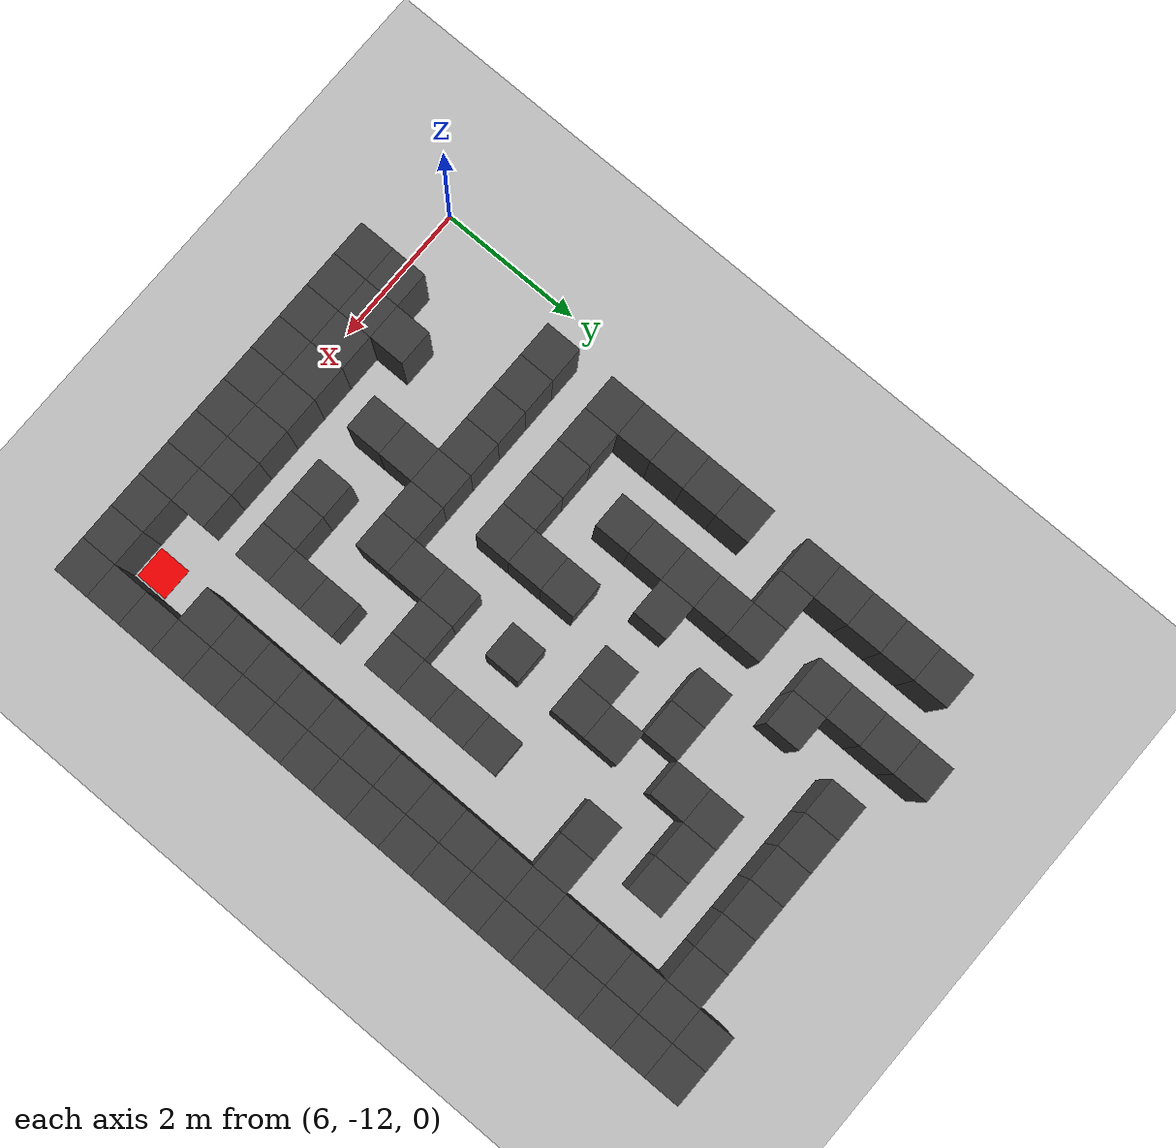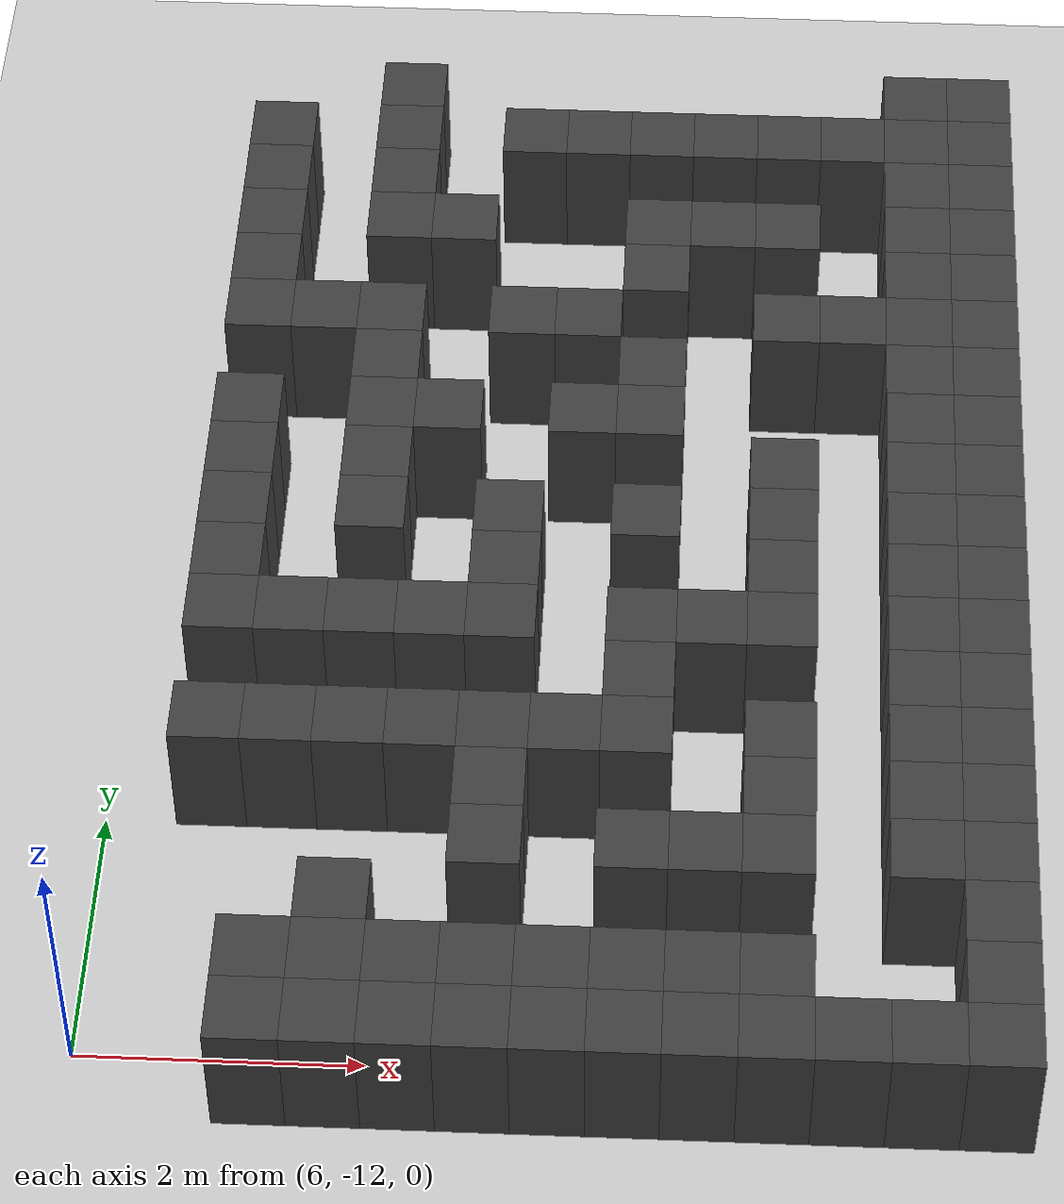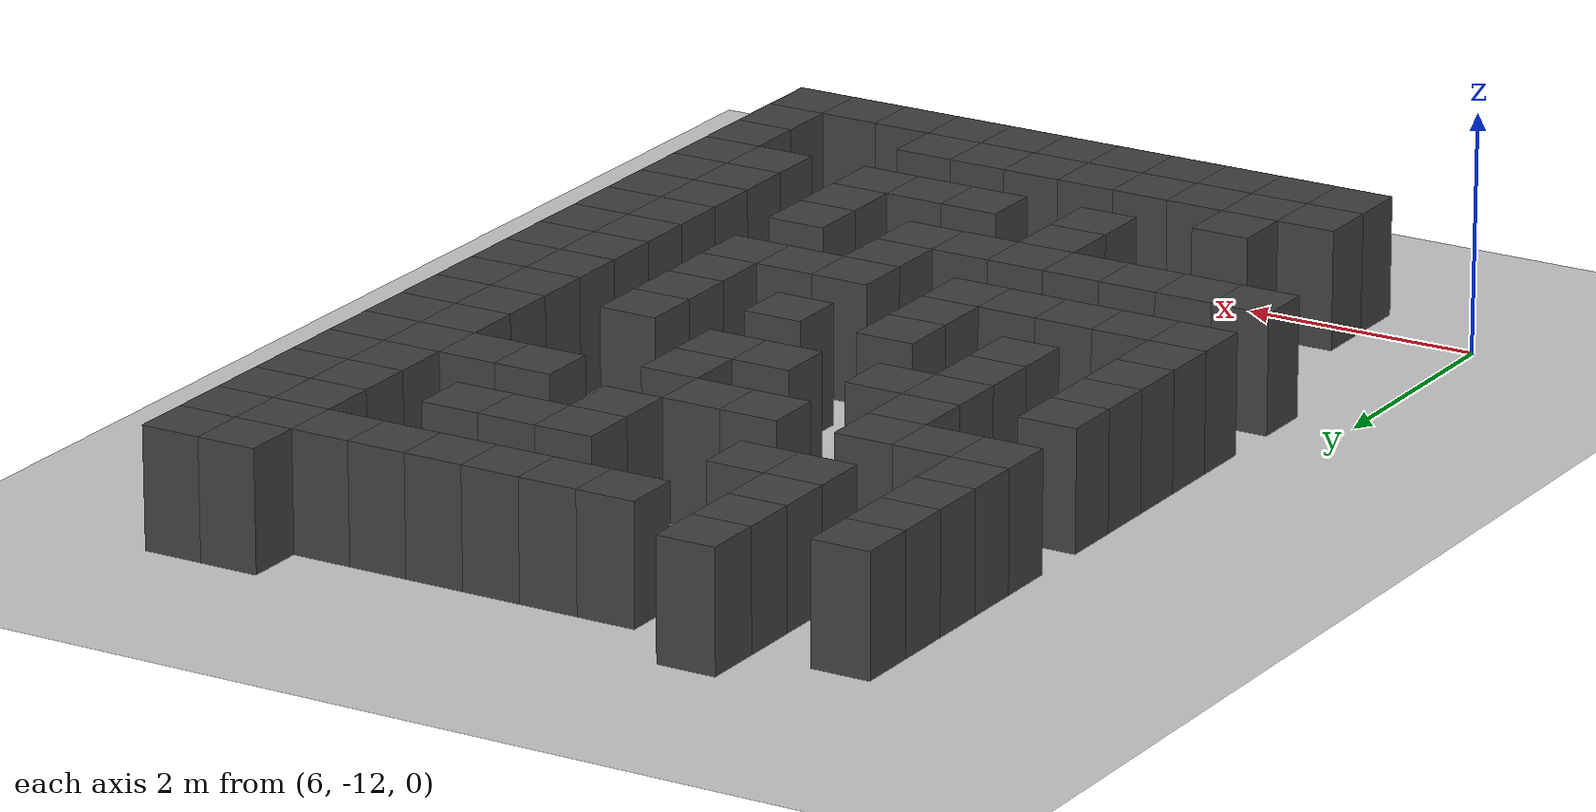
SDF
<sdf version="1.7">
 <world name="map_16048">
  <model name="ground_plane">
   <static>true</static>
   <link name="link">
    <collision name="collision">
     <geometry><plane><normal>0 0 1</normal><size>200 200</size></plane></geometry>
    </collision>
    <visual name="visual">
     <geometry><plane><normal>0 0 1</normal><size>200 200</size></plane></geometry>
     <material><ambient>0.8 0.8 0.8 1</ambient><diffuse>0.8 0.8 0.8 1</diffuse></material>
    </visual>
   </link>
  </model>
  <model name="maze_environment">
   <static>true</static>
   <link name="wall_758">
    <pose>7.750 -3.250 0.500 0 0 0</pose>
    <collision name="col"><geometry><box><size>0.5 0.5 1.0</size></box></geometry></collision>
    <visual name="vis">
     <geometry><box><size>0.5 0.5 1.0</size></box></geometry>
     <material><ambient>0.15 0.15 0.15 1</ambient><diffuse>0.25 0.25 0.25 1</diffuse></material>
    </visual>
   </link>
   <link name="wall_759">
    <pose>11.750 -3.250 0.500 0 0 0</pose>
    <collision name="col"><geometry><box><size>0.5 0.5 1.0</size></box></geometry></collision>
    <visual name="vis">
     <geometry><box><size>0.5 0.5 1.0</size></box></geometry>
     <material><ambient>0.15 0.15 0.15 1</ambient><diffuse>0.25 0.25 0.25 1</diffuse></material>
    </visual>
   </link>
   <link name="wall_760">
    <pose>12.250 -3.250 0.500 0 0 0</pose>
    <collision name="col"><geometry><box><size>0.5 0.5 1.0</size></box></geometry></collision>
    <visual name="vis">
     <geometry><box><size>0.5 0.5 1.0</size></box></geometry>
     <material><ambient>0.15 0.15 0.15 1</ambient><diffuse>0.25 0.25 0.25 1</diffuse></material>
    </visual>
   </link>
   <link name="wall_786">
    <pose>6.750 -3.750 0.500 0 0 0</pose>
    <collision name="col"><geometry><box><size>0.5 0.5 1.0</size></box></geometry></collision>
    <visual name="vis">
     <geometry><box><size>0.5 0.5 1.0</size></box></geometry>
     <material><ambient>0.15 0.15 0.15 1</ambient><diffuse>0.25 0.25 0.25 1</diffuse></material>
    </visual>
   </link>
   <link name="wall_787">
    <pose>7.750 -3.750 0.500 0 0 0</pose>
    <collision name="col"><geometry><box><size>0.5 0.5 1.0</size></box></geometry></collision>
    <visual name="vis">
     <geometry><box><size>0.5 0.5 1.0</size></box></geometry>
     <material><ambient>0.15 0.15 0.15 1</ambient><diffuse>0.25 0.25 0.25 1</diffuse></material>
    </visual>
   </link>
   <link name="wall_788">
    <pose>8.750 -3.750 0.500 0 0 0</pose>
    <collision name="col"><geometry><box><size>0.5 0.5 1.0</size></box></geometry></collision>
    <visual name="vis">
     <geometry><box><size>0.5 0.5 1.0</size></box></geometry>
     <material><ambient>0.15 0.15 0.15 1</ambient><diffuse>0.25 0.25 0.25 1</diffuse></material>
    </visual>
   </link>
   <link name="wall_789">
    <pose>9.250 -3.750 0.500 0 0 0</pose>
    <collision name="col"><geometry><box><size>0.5 0.5 1.0</size></box></geometry></collision>
    <visual name="vis">
     <geometry><box><size>0.5 0.5 1.0</size></box></geometry>
     <material><ambient>0.15 0.15 0.15 1</ambient><diffuse>0.25 0.25 0.25 1</diffuse></material>
    </visual>
   </link>
   <link name="wall_790">
    <pose>9.750 -3.750 0.500 0 0 0</pose>
    <collision name="col"><geometry><box><size>0.5 0.5 1.0</size></box></geometry></collision>
    <visual name="vis">
     <geometry><box><size>0.5 0.5 1.0</size></box></geometry>
     <material><ambient>0.15 0.15 0.15 1</ambient><diffuse>0.25 0.25 0.25 1</diffuse></material>
    </visual>
   </link>
   <link name="wall_791">
    <pose>10.250 -3.750 0.500 0 0 0</pose>
    <collision name="col"><geometry><box><size>0.5 0.5 1.0</size></box></geometry></collision>
    <visual name="vis">
     <geometry><box><size>0.5 0.5 1.0</size></box></geometry>
     <material><ambient>0.15 0.15 0.15 1</ambient><diffuse>0.25 0.25 0.25 1</diffuse></material>
    </visual>
   </link>
   <link name="wall_792">
    <pose>10.750 -3.750 0.500 0 0 0</pose>
    <collision name="col"><geometry><box><size>0.5 0.5 1.0</size></box></geometry></collision>
    <visual name="vis">
     <geometry><box><size>0.5 0.5 1.0</size></box></geometry>
     <material><ambient>0.15 0.15 0.15 1</ambient><diffuse>0.25 0.25 0.25 1</diffuse></material>
    </visual>
   </link>
   <link name="wall_793">
    <pose>11.250 -3.750 0.500 0 0 0</pose>
    <collision name="col"><geometry><box><size>0.5 0.5 1.0</size></box></geometry></collision>
    <visual name="vis">
     <geometry><box><size>0.5 0.5 1.0</size></box></geometry>
     <material><ambient>0.15 0.15 0.15 1</ambient><diffuse>0.25 0.25 0.25 1</diffuse></material>
    </visual>
   </link>
   <link name="wall_794">
    <pose>11.750 -3.750 0.500 0 0 0</pose>
    <collision name="col"><geometry><box><size>0.5 0.5 1.0</size></box></geometry></collision>
    <visual name="vis">
     <geometry><box><size>0.5 0.5 1.0</size></box></geometry>
     <material><ambient>0.15 0.15 0.15 1</ambient><diffuse>0.25 0.25 0.25 1</diffuse></material>
    </visual>
   </link>
   <link name="wall_795">
    <pose>12.250 -3.750 0.500 0 0 0</pose>
    <collision name="col"><geometry><box><size>0.5 0.5 1.0</size></box></geometry></collision>
    <visual name="vis">
     <geometry><box><size>0.5 0.5 1.0</size></box></geometry>
     <material><ambient>0.15 0.15 0.15 1</ambient><diffuse>0.25 0.25 0.25 1</diffuse></material>
    </visual>
   </link>
   <link name="wall_805">
    <pose>6.750 -4.250 0.500 0 0 0</pose>
    <collision name="col"><geometry><box><size>0.5 0.5 1.0</size></box></geometry></collision>
    <visual name="vis">
     <geometry><box><size>0.5 0.5 1.0</size></box></geometry>
     <material><ambient>0.15 0.15 0.15 1</ambient><diffuse>0.25 0.25 0.25 1</diffuse></material>
    </visual>
   </link>
   <link name="wall_806">
    <pose>7.750 -4.250 0.500 0 0 0</pose>
    <collision name="col"><geometry><box><size>0.5 0.5 1.0</size></box></geometry></collision>
    <visual name="vis">
     <geometry><box><size>0.5 0.5 1.0</size></box></geometry>
     <material><ambient>0.15 0.15 0.15 1</ambient><diffuse>0.25 0.25 0.25 1</diffuse></material>
    </visual>
   </link>
   <link name="wall_807">
    <pose>11.750 -4.250 0.500 0 0 0</pose>
    <collision name="col"><geometry><box><size>0.5 0.5 1.0</size></box></geometry></collision>
    <visual name="vis">
     <geometry><box><size>0.5 0.5 1.0</size></box></geometry>
     <material><ambient>0.15 0.15 0.15 1</ambient><diffuse>0.25 0.25 0.25 1</diffuse></material>
    </visual>
   </link>
   <link name="wall_808">
    <pose>12.250 -4.250 0.500 0 0 0</pose>
    <collision name="col"><geometry><box><size>0.5 0.5 1.0</size></box></geometry></collision>
    <visual name="vis">
     <geometry><box><size>0.5 0.5 1.0</size></box></geometry>
     <material><ambient>0.15 0.15 0.15 1</ambient><diffuse>0.25 0.25 0.25 1</diffuse></material>
    </visual>
   </link>
   <link name="wall_835">
    <pose>6.750 -4.750 0.500 0 0 0</pose>
    <collision name="col"><geometry><box><size>0.5 0.5 1.0</size></box></geometry></collision>
    <visual name="vis">
     <geometry><box><size>0.5 0.5 1.0</size></box></geometry>
     <material><ambient>0.15 0.15 0.15 1</ambient><diffuse>0.25 0.25 0.25 1</diffuse></material>
    </visual>
   </link>
   <link name="wall_836">
    <pose>7.750 -4.750 0.500 0 0 0</pose>
    <collision name="col"><geometry><box><size>0.5 0.5 1.0</size></box></geometry></collision>
    <visual name="vis">
     <geometry><box><size>0.5 0.5 1.0</size></box></geometry>
     <material><ambient>0.15 0.15 0.15 1</ambient><diffuse>0.25 0.25 0.25 1</diffuse></material>
    </visual>
   </link>
   <link name="wall_837">
    <pose>8.250 -4.750 0.500 0 0 0</pose>
    <collision name="col"><geometry><box><size>0.5 0.5 1.0</size></box></geometry></collision>
    <visual name="vis">
     <geometry><box><size>0.5 0.5 1.0</size></box></geometry>
     <material><ambient>0.15 0.15 0.15 1</ambient><diffuse>0.25 0.25 0.25 1</diffuse></material>
    </visual>
   </link>
   <link name="wall_838">
    <pose>9.750 -4.750 0.500 0 0 0</pose>
    <collision name="col"><geometry><box><size>0.5 0.5 1.0</size></box></geometry></collision>
    <visual name="vis">
     <geometry><box><size>0.5 0.5 1.0</size></box></geometry>
     <material><ambient>0.15 0.15 0.15 1</ambient><diffuse>0.25 0.25 0.25 1</diffuse></material>
    </visual>
   </link>
   <link name="wall_839">
    <pose>10.250 -4.750 0.500 0 0 0</pose>
    <collision name="col"><geometry><box><size>0.5 0.5 1.0</size></box></geometry></collision>
    <visual name="vis">
     <geometry><box><size>0.5 0.5 1.0</size></box></geometry>
     <material><ambient>0.15 0.15 0.15 1</ambient><diffuse>0.25 0.25 0.25 1</diffuse></material>
    </visual>
   </link>
   <link name="wall_840">
    <pose>10.750 -4.750 0.500 0 0 0</pose>
    <collision name="col"><geometry><box><size>0.5 0.5 1.0</size></box></geometry></collision>
    <visual name="vis">
     <geometry><box><size>0.5 0.5 1.0</size></box></geometry>
     <material><ambient>0.15 0.15 0.15 1</ambient><diffuse>0.25 0.25 0.25 1</diffuse></material>
    </visual>
   </link>
   <link name="wall_841">
    <pose>11.750 -4.750 0.500 0 0 0</pose>
    <collision name="col"><geometry><box><size>0.5 0.5 1.0</size></box></geometry></collision>
    <visual name="vis">
     <geometry><box><size>0.5 0.5 1.0</size></box></geometry>
     <material><ambient>0.15 0.15 0.15 1</ambient><diffuse>0.25 0.25 0.25 1</diffuse></material>
    </visual>
   </link>
   <link name="wall_842">
    <pose>12.250 -4.750 0.500 0 0 0</pose>
    <collision name="col"><geometry><box><size>0.5 0.5 1.0</size></box></geometry></collision>
    <visual name="vis">
     <geometry><box><size>0.5 0.5 1.0</size></box></geometry>
     <material><ambient>0.15 0.15 0.15 1</ambient><diffuse>0.25 0.25 0.25 1</diffuse></material>
    </visual>
   </link>
   <link name="wall_852">
    <pose>6.750 -5.250 0.500 0 0 0</pose>
    <collision name="col"><geometry><box><size>0.5 0.5 1.0</size></box></geometry></collision>
    <visual name="vis">
     <geometry><box><size>0.5 0.5 1.0</size></box></geometry>
     <material><ambient>0.15 0.15 0.15 1</ambient><diffuse>0.25 0.25 0.25 1</diffuse></material>
    </visual>
   </link>
   <link name="wall_853">
    <pose>9.750 -5.250 0.500 0 0 0</pose>
    <collision name="col"><geometry><box><size>0.5 0.5 1.0</size></box></geometry></collision>
    <visual name="vis">
     <geometry><box><size>0.5 0.5 1.0</size></box></geometry>
     <material><ambient>0.15 0.15 0.15 1</ambient><diffuse>0.25 0.25 0.25 1</diffuse></material>
    </visual>
   </link>
   <link name="wall_854">
    <pose>11.750 -5.250 0.500 0 0 0</pose>
    <collision name="col"><geometry><box><size>0.5 0.5 1.0</size></box></geometry></collision>
    <visual name="vis">
     <geometry><box><size>0.5 0.5 1.0</size></box></geometry>
     <material><ambient>0.15 0.15 0.15 1</ambient><diffuse>0.25 0.25 0.25 1</diffuse></material>
    </visual>
   </link>
   <link name="wall_855">
    <pose>12.250 -5.250 0.500 0 0 0</pose>
    <collision name="col"><geometry><box><size>0.5 0.5 1.0</size></box></geometry></collision>
    <visual name="vis">
     <geometry><box><size>0.5 0.5 1.0</size></box></geometry>
     <material><ambient>0.15 0.15 0.15 1</ambient><diffuse>0.25 0.25 0.25 1</diffuse></material>
    </visual>
   </link>
   <link name="wall_881">
    <pose>6.750 -5.750 0.500 0 0 0</pose>
    <collision name="col"><geometry><box><size>0.5 0.5 1.0</size></box></geometry></collision>
    <visual name="vis">
     <geometry><box><size>0.5 0.5 1.0</size></box></geometry>
     <material><ambient>0.15 0.15 0.15 1</ambient><diffuse>0.25 0.25 0.25 1</diffuse></material>
    </visual>
   </link>
   <link name="wall_882">
    <pose>7.250 -5.750 0.500 0 0 0</pose>
    <collision name="col"><geometry><box><size>0.5 0.5 1.0</size></box></geometry></collision>
    <visual name="vis">
     <geometry><box><size>0.5 0.5 1.0</size></box></geometry>
     <material><ambient>0.15 0.15 0.15 1</ambient><diffuse>0.25 0.25 0.25 1</diffuse></material>
    </visual>
   </link>
   <link name="wall_883">
    <pose>7.750 -5.750 0.500 0 0 0</pose>
    <collision name="col"><geometry><box><size>0.5 0.5 1.0</size></box></geometry></collision>
    <visual name="vis">
     <geometry><box><size>0.5 0.5 1.0</size></box></geometry>
     <material><ambient>0.15 0.15 0.15 1</ambient><diffuse>0.25 0.25 0.25 1</diffuse></material>
    </visual>
   </link>
   <link name="wall_884">
    <pose>8.750 -5.750 0.500 0 0 0</pose>
    <collision name="col"><geometry><box><size>0.5 0.5 1.0</size></box></geometry></collision>
    <visual name="vis">
     <geometry><box><size>0.5 0.5 1.0</size></box></geometry>
     <material><ambient>0.15 0.15 0.15 1</ambient><diffuse>0.25 0.25 0.25 1</diffuse></material>
    </visual>
   </link>
   <link name="wall_885">
    <pose>9.250 -5.750 0.500 0 0 0</pose>
    <collision name="col"><geometry><box><size>0.5 0.5 1.0</size></box></geometry></collision>
    <visual name="vis">
     <geometry><box><size>0.5 0.5 1.0</size></box></geometry>
     <material><ambient>0.15 0.15 0.15 1</ambient><diffuse>0.25 0.25 0.25 1</diffuse></material>
    </visual>
   </link>
   <link name="wall_886">
    <pose>10.750 -5.750 0.500 0 0 0</pose>
    <collision name="col"><geometry><box><size>0.5 0.5 1.0</size></box></geometry></collision>
    <visual name="vis">
     <geometry><box><size>0.5 0.5 1.0</size></box></geometry>
     <material><ambient>0.15 0.15 0.15 1</ambient><diffuse>0.25 0.25 0.25 1</diffuse></material>
    </visual>
   </link>
   <link name="wall_887">
    <pose>11.250 -5.750 0.500 0 0 0</pose>
    <collision name="col"><geometry><box><size>0.5 0.5 1.0</size></box></geometry></collision>
    <visual name="vis">
     <geometry><box><size>0.5 0.5 1.0</size></box></geometry>
     <material><ambient>0.15 0.15 0.15 1</ambient><diffuse>0.25 0.25 0.25 1</diffuse></material>
    </visual>
   </link>
   <link name="wall_888">
    <pose>11.750 -5.750 0.500 0 0 0</pose>
    <collision name="col"><geometry><box><size>0.5 0.5 1.0</size></box></geometry></collision>
    <visual name="vis">
     <geometry><box><size>0.5 0.5 1.0</size></box></geometry>
     <material><ambient>0.15 0.15 0.15 1</ambient><diffuse>0.25 0.25 0.25 1</diffuse></material>
    </visual>
   </link>
   <link name="wall_889">
    <pose>12.250 -5.750 0.500 0 0 0</pose>
    <collision name="col"><geometry><box><size>0.5 0.5 1.0</size></box></geometry></collision>
    <visual name="vis">
     <geometry><box><size>0.5 0.5 1.0</size></box></geometry>
     <material><ambient>0.15 0.15 0.15 1</ambient><diffuse>0.25 0.25 0.25 1</diffuse></material>
    </visual>
   </link>
   <link name="wall_901">
    <pose>7.750 -6.250 0.500 0 0 0</pose>
    <collision name="col"><geometry><box><size>0.5 0.5 1.0</size></box></geometry></collision>
    <visual name="vis">
     <geometry><box><size>0.5 0.5 1.0</size></box></geometry>
     <material><ambient>0.15 0.15 0.15 1</ambient><diffuse>0.25 0.25 0.25 1</diffuse></material>
    </visual>
   </link>
   <link name="wall_902">
    <pose>9.750 -6.250 0.500 0 0 0</pose>
    <collision name="col"><geometry><box><size>0.5 0.5 1.0</size></box></geometry></collision>
    <visual name="vis">
     <geometry><box><size>0.5 0.5 1.0</size></box></geometry>
     <material><ambient>0.15 0.15 0.15 1</ambient><diffuse>0.25 0.25 0.25 1</diffuse></material>
    </visual>
   </link>
   <link name="wall_903">
    <pose>11.750 -6.250 0.500 0 0 0</pose>
    <collision name="col"><geometry><box><size>0.5 0.5 1.0</size></box></geometry></collision>
    <visual name="vis">
     <geometry><box><size>0.5 0.5 1.0</size></box></geometry>
     <material><ambient>0.15 0.15 0.15 1</ambient><diffuse>0.25 0.25 0.25 1</diffuse></material>
    </visual>
   </link>
   <link name="wall_904">
    <pose>12.250 -6.250 0.500 0 0 0</pose>
    <collision name="col"><geometry><box><size>0.5 0.5 1.0</size></box></geometry></collision>
    <visual name="vis">
     <geometry><box><size>0.5 0.5 1.0</size></box></geometry>
     <material><ambient>0.15 0.15 0.15 1</ambient><diffuse>0.25 0.25 0.25 1</diffuse></material>
    </visual>
   </link>
   <link name="wall_929">
    <pose>6.750 -6.750 0.500 0 0 0</pose>
    <collision name="col"><geometry><box><size>0.5 0.5 1.0</size></box></geometry></collision>
    <visual name="vis">
     <geometry><box><size>0.5 0.5 1.0</size></box></geometry>
     <material><ambient>0.15 0.15 0.15 1</ambient><diffuse>0.25 0.25 0.25 1</diffuse></material>
    </visual>
   </link>
   <link name="wall_930">
    <pose>7.750 -6.750 0.500 0 0 0</pose>
    <collision name="col"><geometry><box><size>0.5 0.5 1.0</size></box></geometry></collision>
    <visual name="vis">
     <geometry><box><size>0.5 0.5 1.0</size></box></geometry>
     <material><ambient>0.15 0.15 0.15 1</ambient><diffuse>0.25 0.25 0.25 1</diffuse></material>
    </visual>
   </link>
   <link name="wall_931">
    <pose>8.250 -6.750 0.500 0 0 0</pose>
    <collision name="col"><geometry><box><size>0.5 0.5 1.0</size></box></geometry></collision>
    <visual name="vis">
     <geometry><box><size>0.5 0.5 1.0</size></box></geometry>
     <material><ambient>0.15 0.15 0.15 1</ambient><diffuse>0.25 0.25 0.25 1</diffuse></material>
    </visual>
   </link>
   <link name="wall_932">
    <pose>9.250 -6.750 0.500 0 0 0</pose>
    <collision name="col"><geometry><box><size>0.5 0.5 1.0</size></box></geometry></collision>
    <visual name="vis">
     <geometry><box><size>0.5 0.5 1.0</size></box></geometry>
     <material><ambient>0.15 0.15 0.15 1</ambient><diffuse>0.25 0.25 0.25 1</diffuse></material>
    </visual>
   </link>
   <link name="wall_933">
    <pose>9.750 -6.750 0.500 0 0 0</pose>
    <collision name="col"><geometry><box><size>0.5 0.5 1.0</size></box></geometry></collision>
    <visual name="vis">
     <geometry><box><size>0.5 0.5 1.0</size></box></geometry>
     <material><ambient>0.15 0.15 0.15 1</ambient><diffuse>0.25 0.25 0.25 1</diffuse></material>
    </visual>
   </link>
   <link name="wall_934">
    <pose>11.750 -6.750 0.500 0 0 0</pose>
    <collision name="col"><geometry><box><size>0.5 0.5 1.0</size></box></geometry></collision>
    <visual name="vis">
     <geometry><box><size>0.5 0.5 1.0</size></box></geometry>
     <material><ambient>0.15 0.15 0.15 1</ambient><diffuse>0.25 0.25 0.25 1</diffuse></material>
    </visual>
   </link>
   <link name="wall_935">
    <pose>12.250 -6.750 0.500 0 0 0</pose>
    <collision name="col"><geometry><box><size>0.5 0.5 1.0</size></box></geometry></collision>
    <visual name="vis">
     <geometry><box><size>0.5 0.5 1.0</size></box></geometry>
     <material><ambient>0.15 0.15 0.15 1</ambient><diffuse>0.25 0.25 0.25 1</diffuse></material>
    </visual>
   </link>
   <link name="wall_941">
    <pose>6.750 -7.250 0.500 0 0 0</pose>
    <collision name="col"><geometry><box><size>0.5 0.5 1.0</size></box></geometry></collision>
    <visual name="vis">
     <geometry><box><size>0.5 0.5 1.0</size></box></geometry>
     <material><ambient>0.15 0.15 0.15 1</ambient><diffuse>0.25 0.25 0.25 1</diffuse></material>
    </visual>
   </link>
   <link name="wall_942">
    <pose>7.750 -7.250 0.500 0 0 0</pose>
    <collision name="col"><geometry><box><size>0.5 0.5 1.0</size></box></geometry></collision>
    <visual name="vis">
     <geometry><box><size>0.5 0.5 1.0</size></box></geometry>
     <material><ambient>0.15 0.15 0.15 1</ambient><diffuse>0.25 0.25 0.25 1</diffuse></material>
    </visual>
   </link>
   <link name="wall_943">
    <pose>10.750 -7.250 0.500 0 0 0</pose>
    <collision name="col"><geometry><box><size>0.5 0.5 1.0</size></box></geometry></collision>
    <visual name="vis">
     <geometry><box><size>0.5 0.5 1.0</size></box></geometry>
     <material><ambient>0.15 0.15 0.15 1</ambient><diffuse>0.25 0.25 0.25 1</diffuse></material>
    </visual>
   </link>
   <link name="wall_944">
    <pose>11.750 -7.250 0.500 0 0 0</pose>
    <collision name="col"><geometry><box><size>0.5 0.5 1.0</size></box></geometry></collision>
    <visual name="vis">
     <geometry><box><size>0.5 0.5 1.0</size></box></geometry>
     <material><ambient>0.15 0.15 0.15 1</ambient><diffuse>0.25 0.25 0.25 1</diffuse></material>
    </visual>
   </link>
   <link name="wall_945">
    <pose>12.250 -7.250 0.500 0 0 0</pose>
    <collision name="col"><geometry><box><size>0.5 0.5 1.0</size></box></geometry></collision>
    <visual name="vis">
     <geometry><box><size>0.5 0.5 1.0</size></box></geometry>
     <material><ambient>0.15 0.15 0.15 1</ambient><diffuse>0.25 0.25 0.25 1</diffuse></material>
    </visual>
   </link>
   <link name="wall_974">
    <pose>6.750 -7.750 0.500 0 0 0</pose>
    <collision name="col"><geometry><box><size>0.5 0.5 1.0</size></box></geometry></collision>
    <visual name="vis">
     <geometry><box><size>0.5 0.5 1.0</size></box></geometry>
     <material><ambient>0.15 0.15 0.15 1</ambient><diffuse>0.25 0.25 0.25 1</diffuse></material>
    </visual>
   </link>
   <link name="wall_975">
    <pose>7.750 -7.750 0.500 0 0 0</pose>
    <collision name="col"><geometry><box><size>0.5 0.5 1.0</size></box></geometry></collision>
    <visual name="vis">
     <geometry><box><size>0.5 0.5 1.0</size></box></geometry>
     <material><ambient>0.15 0.15 0.15 1</ambient><diffuse>0.25 0.25 0.25 1</diffuse></material>
    </visual>
   </link>
   <link name="wall_976">
    <pose>8.750 -7.750 0.500 0 0 0</pose>
    <collision name="col"><geometry><box><size>0.5 0.5 1.0</size></box></geometry></collision>
    <visual name="vis">
     <geometry><box><size>0.5 0.5 1.0</size></box></geometry>
     <material><ambient>0.15 0.15 0.15 1</ambient><diffuse>0.25 0.25 0.25 1</diffuse></material>
    </visual>
   </link>
   <link name="wall_977">
    <pose>9.750 -7.750 0.500 0 0 0</pose>
    <collision name="col"><geometry><box><size>0.5 0.5 1.0</size></box></geometry></collision>
    <visual name="vis">
     <geometry><box><size>0.5 0.5 1.0</size></box></geometry>
     <material><ambient>0.15 0.15 0.15 1</ambient><diffuse>0.25 0.25 0.25 1</diffuse></material>
    </visual>
   </link>
   <link name="wall_978">
    <pose>10.750 -7.750 0.500 0 0 0</pose>
    <collision name="col"><geometry><box><size>0.5 0.5 1.0</size></box></geometry></collision>
    <visual name="vis">
     <geometry><box><size>0.5 0.5 1.0</size></box></geometry>
     <material><ambient>0.15 0.15 0.15 1</ambient><diffuse>0.25 0.25 0.25 1</diffuse></material>
    </visual>
   </link>
   <link name="wall_979">
    <pose>11.750 -7.750 0.500 0 0 0</pose>
    <collision name="col"><geometry><box><size>0.5 0.5 1.0</size></box></geometry></collision>
    <visual name="vis">
     <geometry><box><size>0.5 0.5 1.0</size></box></geometry>
     <material><ambient>0.15 0.15 0.15 1</ambient><diffuse>0.25 0.25 0.25 1</diffuse></material>
    </visual>
   </link>
   <link name="wall_980">
    <pose>12.250 -7.750 0.500 0 0 0</pose>
    <collision name="col"><geometry><box><size>0.5 0.5 1.0</size></box></geometry></collision>
    <visual name="vis">
     <geometry><box><size>0.5 0.5 1.0</size></box></geometry>
     <material><ambient>0.15 0.15 0.15 1</ambient><diffuse>0.25 0.25 0.25 1</diffuse></material>
    </visual>
   </link>
   <link name="wall_990">
    <pose>6.750 -8.250 0.500 0 0 0</pose>
    <collision name="col"><geometry><box><size>0.5 0.5 1.0</size></box></geometry></collision>
    <visual name="vis">
     <geometry><box><size>0.5 0.5 1.0</size></box></geometry>
     <material><ambient>0.15 0.15 0.15 1</ambient><diffuse>0.25 0.25 0.25 1</diffuse></material>
    </visual>
   </link>
   <link name="wall_991">
    <pose>8.750 -8.250 0.500 0 0 0</pose>
    <collision name="col"><geometry><box><size>0.5 0.5 1.0</size></box></geometry></collision>
    <visual name="vis">
     <geometry><box><size>0.5 0.5 1.0</size></box></geometry>
     <material><ambient>0.15 0.15 0.15 1</ambient><diffuse>0.25 0.25 0.25 1</diffuse></material>
    </visual>
   </link>
   <link name="wall_992">
    <pose>10.750 -8.250 0.500 0 0 0</pose>
    <collision name="col"><geometry><box><size>0.5 0.5 1.0</size></box></geometry></collision>
    <visual name="vis">
     <geometry><box><size>0.5 0.5 1.0</size></box></geometry>
     <material><ambient>0.15 0.15 0.15 1</ambient><diffuse>0.25 0.25 0.25 1</diffuse></material>
    </visual>
   </link>
   <link name="wall_993">
    <pose>11.750 -8.250 0.500 0 0 0</pose>
    <collision name="col"><geometry><box><size>0.5 0.5 1.0</size></box></geometry></collision>
    <visual name="vis">
     <geometry><box><size>0.5 0.5 1.0</size></box></geometry>
     <material><ambient>0.15 0.15 0.15 1</ambient><diffuse>0.25 0.25 0.25 1</diffuse></material>
    </visual>
   </link>
   <link name="wall_994">
    <pose>12.250 -8.250 0.500 0 0 0</pose>
    <collision name="col"><geometry><box><size>0.5 0.5 1.0</size></box></geometry></collision>
    <visual name="vis">
     <geometry><box><size>0.5 0.5 1.0</size></box></geometry>
     <material><ambient>0.15 0.15 0.15 1</ambient><diffuse>0.25 0.25 0.25 1</diffuse></material>
    </visual>
   </link>
   <link name="wall_1021">
    <pose>6.750 -8.750 0.500 0 0 0</pose>
    <collision name="col"><geometry><box><size>0.5 0.5 1.0</size></box></geometry></collision>
    <visual name="vis">
     <geometry><box><size>0.5 0.5 1.0</size></box></geometry>
     <material><ambient>0.15 0.15 0.15 1</ambient><diffuse>0.25 0.25 0.25 1</diffuse></material>
    </visual>
   </link>
   <link name="wall_1022">
    <pose>7.250 -8.750 0.500 0 0 0</pose>
    <collision name="col"><geometry><box><size>0.5 0.5 1.0</size></box></geometry></collision>
    <visual name="vis">
     <geometry><box><size>0.5 0.5 1.0</size></box></geometry>
     <material><ambient>0.15 0.15 0.15 1</ambient><diffuse>0.25 0.25 0.25 1</diffuse></material>
    </visual>
   </link>
   <link name="wall_1023">
    <pose>7.750 -8.750 0.500 0 0 0</pose>
    <collision name="col"><geometry><box><size>0.5 0.5 1.0</size></box></geometry></collision>
    <visual name="vis">
     <geometry><box><size>0.5 0.5 1.0</size></box></geometry>
     <material><ambient>0.15 0.15 0.15 1</ambient><diffuse>0.25 0.25 0.25 1</diffuse></material>
    </visual>
   </link>
   <link name="wall_1024">
    <pose>8.250 -8.750 0.500 0 0 0</pose>
    <collision name="col"><geometry><box><size>0.5 0.5 1.0</size></box></geometry></collision>
    <visual name="vis">
     <geometry><box><size>0.5 0.5 1.0</size></box></geometry>
     <material><ambient>0.15 0.15 0.15 1</ambient><diffuse>0.25 0.25 0.25 1</diffuse></material>
    </visual>
   </link>
   <link name="wall_1025">
    <pose>8.750 -8.750 0.500 0 0 0</pose>
    <collision name="col"><geometry><box><size>0.5 0.5 1.0</size></box></geometry></collision>
    <visual name="vis">
     <geometry><box><size>0.5 0.5 1.0</size></box></geometry>
     <material><ambient>0.15 0.15 0.15 1</ambient><diffuse>0.25 0.25 0.25 1</diffuse></material>
    </visual>
   </link>
   <link name="wall_1026">
    <pose>9.750 -8.750 0.500 0 0 0</pose>
    <collision name="col"><geometry><box><size>0.5 0.5 1.0</size></box></geometry></collision>
    <visual name="vis">
     <geometry><box><size>0.5 0.5 1.0</size></box></geometry>
     <material><ambient>0.15 0.15 0.15 1</ambient><diffuse>0.25 0.25 0.25 1</diffuse></material>
    </visual>
   </link>
   <link name="wall_1027">
    <pose>10.250 -8.750 0.500 0 0 0</pose>
    <collision name="col"><geometry><box><size>0.5 0.5 1.0</size></box></geometry></collision>
    <visual name="vis">
     <geometry><box><size>0.5 0.5 1.0</size></box></geometry>
     <material><ambient>0.15 0.15 0.15 1</ambient><diffuse>0.25 0.25 0.25 1</diffuse></material>
    </visual>
   </link>
   <link name="wall_1028">
    <pose>10.750 -8.750 0.500 0 0 0</pose>
    <collision name="col"><geometry><box><size>0.5 0.5 1.0</size></box></geometry></collision>
    <visual name="vis">
     <geometry><box><size>0.5 0.5 1.0</size></box></geometry>
     <material><ambient>0.15 0.15 0.15 1</ambient><diffuse>0.25 0.25 0.25 1</diffuse></material>
    </visual>
   </link>
   <link name="wall_1029">
    <pose>11.750 -8.750 0.500 0 0 0</pose>
    <collision name="col"><geometry><box><size>0.5 0.5 1.0</size></box></geometry></collision>
    <visual name="vis">
     <geometry><box><size>0.5 0.5 1.0</size></box></geometry>
     <material><ambient>0.15 0.15 0.15 1</ambient><diffuse>0.25 0.25 0.25 1</diffuse></material>
    </visual>
   </link>
   <link name="wall_1030">
    <pose>12.250 -8.750 0.500 0 0 0</pose>
    <collision name="col"><geometry><box><size>0.5 0.5 1.0</size></box></geometry></collision>
    <visual name="vis">
     <geometry><box><size>0.5 0.5 1.0</size></box></geometry>
     <material><ambient>0.15 0.15 0.15 1</ambient><diffuse>0.25 0.25 0.25 1</diffuse></material>
    </visual>
   </link>
   <link name="wall_1038">
    <pose>9.750 -9.250 0.500 0 0 0</pose>
    <collision name="col"><geometry><box><size>0.5 0.5 1.0</size></box></geometry></collision>
    <visual name="vis">
     <geometry><box><size>0.5 0.5 1.0</size></box></geometry>
     <material><ambient>0.15 0.15 0.15 1</ambient><diffuse>0.25 0.25 0.25 1</diffuse></material>
    </visual>
   </link>
   <link name="wall_1039">
    <pose>11.750 -9.250 0.500 0 0 0</pose>
    <collision name="col"><geometry><box><size>0.5 0.5 1.0</size></box></geometry></collision>
    <visual name="vis">
     <geometry><box><size>0.5 0.5 1.0</size></box></geometry>
     <material><ambient>0.15 0.15 0.15 1</ambient><diffuse>0.25 0.25 0.25 1</diffuse></material>
    </visual>
   </link>
   <link name="wall_1040">
    <pose>12.250 -9.250 0.500 0 0 0</pose>
    <collision name="col"><geometry><box><size>0.5 0.5 1.0</size></box></geometry></collision>
    <visual name="vis">
     <geometry><box><size>0.5 0.5 1.0</size></box></geometry>
     <material><ambient>0.15 0.15 0.15 1</ambient><diffuse>0.25 0.25 0.25 1</diffuse></material>
    </visual>
   </link>
   <link name="wall_1073">
    <pose>6.750 -9.750 0.500 0 0 0</pose>
    <collision name="col"><geometry><box><size>0.5 0.5 1.0</size></box></geometry></collision>
    <visual name="vis">
     <geometry><box><size>0.5 0.5 1.0</size></box></geometry>
     <material><ambient>0.15 0.15 0.15 1</ambient><diffuse>0.25 0.25 0.25 1</diffuse></material>
    </visual>
   </link>
   <link name="wall_1074">
    <pose>7.250 -9.750 0.500 0 0 0</pose>
    <collision name="col"><geometry><box><size>0.5 0.5 1.0</size></box></geometry></collision>
    <visual name="vis">
     <geometry><box><size>0.5 0.5 1.0</size></box></geometry>
     <material><ambient>0.15 0.15 0.15 1</ambient><diffuse>0.25 0.25 0.25 1</diffuse></material>
    </visual>
   </link>
   <link name="wall_1075">
    <pose>7.750 -9.750 0.500 0 0 0</pose>
    <collision name="col"><geometry><box><size>0.5 0.5 1.0</size></box></geometry></collision>
    <visual name="vis">
     <geometry><box><size>0.5 0.5 1.0</size></box></geometry>
     <material><ambient>0.15 0.15 0.15 1</ambient><diffuse>0.25 0.25 0.25 1</diffuse></material>
    </visual>
   </link>
   <link name="wall_1076">
    <pose>8.250 -9.750 0.500 0 0 0</pose>
    <collision name="col"><geometry><box><size>0.5 0.5 1.0</size></box></geometry></collision>
    <visual name="vis">
     <geometry><box><size>0.5 0.5 1.0</size></box></geometry>
     <material><ambient>0.15 0.15 0.15 1</ambient><diffuse>0.25 0.25 0.25 1</diffuse></material>
    </visual>
   </link>
   <link name="wall_1077">
    <pose>8.750 -9.750 0.500 0 0 0</pose>
    <collision name="col"><geometry><box><size>0.5 0.5 1.0</size></box></geometry></collision>
    <visual name="vis">
     <geometry><box><size>0.5 0.5 1.0</size></box></geometry>
     <material><ambient>0.15 0.15 0.15 1</ambient><diffuse>0.25 0.25 0.25 1</diffuse></material>
    </visual>
   </link>
   <link name="wall_1078">
    <pose>9.250 -9.750 0.500 0 0 0</pose>
    <collision name="col"><geometry><box><size>0.5 0.5 1.0</size></box></geometry></collision>
    <visual name="vis">
     <geometry><box><size>0.5 0.5 1.0</size></box></geometry>
     <material><ambient>0.15 0.15 0.15 1</ambient><diffuse>0.25 0.25 0.25 1</diffuse></material>
    </visual>
   </link>
   <link name="wall_1079">
    <pose>9.750 -9.750 0.500 0 0 0</pose>
    <collision name="col"><geometry><box><size>0.5 0.5 1.0</size></box></geometry></collision>
    <visual name="vis">
     <geometry><box><size>0.5 0.5 1.0</size></box></geometry>
     <material><ambient>0.15 0.15 0.15 1</ambient><diffuse>0.25 0.25 0.25 1</diffuse></material>
    </visual>
   </link>
   <link name="wall_1080">
    <pose>10.750 -9.750 0.500 0 0 0</pose>
    <collision name="col"><geometry><box><size>0.5 0.5 1.0</size></box></geometry></collision>
    <visual name="vis">
     <geometry><box><size>0.5 0.5 1.0</size></box></geometry>
     <material><ambient>0.15 0.15 0.15 1</ambient><diffuse>0.25 0.25 0.25 1</diffuse></material>
    </visual>
   </link>
   <link name="wall_1081">
    <pose>11.750 -9.750 0.500 0 0 0</pose>
    <collision name="col"><geometry><box><size>0.5 0.5 1.0</size></box></geometry></collision>
    <visual name="vis">
     <geometry><box><size>0.5 0.5 1.0</size></box></geometry>
     <material><ambient>0.15 0.15 0.15 1</ambient><diffuse>0.25 0.25 0.25 1</diffuse></material>
    </visual>
   </link>
   <link name="wall_1082">
    <pose>12.250 -9.750 0.500 0 0 0</pose>
    <collision name="col"><geometry><box><size>0.5 0.5 1.0</size></box></geometry></collision>
    <visual name="vis">
     <geometry><box><size>0.5 0.5 1.0</size></box></geometry>
     <material><ambient>0.15 0.15 0.15 1</ambient><diffuse>0.25 0.25 0.25 1</diffuse></material>
    </visual>
   </link>
   <link name="wall_1091">
    <pose>8.750 -10.250 0.500 0 0 0</pose>
    <collision name="col"><geometry><box><size>0.5 0.5 1.0</size></box></geometry></collision>
    <visual name="vis">
     <geometry><box><size>0.5 0.5 1.0</size></box></geometry>
     <material><ambient>0.15 0.15 0.15 1</ambient><diffuse>0.25 0.25 0.25 1</diffuse></material>
    </visual>
   </link>
   <link name="wall_1092">
    <pose>10.750 -10.250 0.500 0 0 0</pose>
    <collision name="col"><geometry><box><size>0.5 0.5 1.0</size></box></geometry></collision>
    <visual name="vis">
     <geometry><box><size>0.5 0.5 1.0</size></box></geometry>
     <material><ambient>0.15 0.15 0.15 1</ambient><diffuse>0.25 0.25 0.25 1</diffuse></material>
    </visual>
   </link>
   <link name="wall_1093">
    <pose>11.750 -10.250 0.500 0 0 0</pose>
    <collision name="col"><geometry><box><size>0.5 0.5 1.0</size></box></geometry></collision>
    <visual name="vis">
     <geometry><box><size>0.5 0.5 1.0</size></box></geometry>
     <material><ambient>0.15 0.15 0.15 1</ambient><diffuse>0.25 0.25 0.25 1</diffuse></material>
    </visual>
   </link>
   <link name="wall_1094">
    <pose>12.250 -10.250 0.500 0 0 0</pose>
    <collision name="col"><geometry><box><size>0.5 0.5 1.0</size></box></geometry></collision>
    <visual name="vis">
     <geometry><box><size>0.5 0.5 1.0</size></box></geometry>
     <material><ambient>0.15 0.15 0.15 1</ambient><diffuse>0.25 0.25 0.25 1</diffuse></material>
    </visual>
   </link>
   <link name="wall_1114">
    <pose>8.750 -10.750 0.500 0 0 0</pose>
    <collision name="col"><geometry><box><size>0.5 0.5 1.0</size></box></geometry></collision>
    <visual name="vis">
     <geometry><box><size>0.5 0.5 1.0</size></box></geometry>
     <material><ambient>0.15 0.15 0.15 1</ambient><diffuse>0.25 0.25 0.25 1</diffuse></material>
    </visual>
   </link>
   <link name="wall_1115">
    <pose>9.750 -10.750 0.500 0 0 0</pose>
    <collision name="col"><geometry><box><size>0.5 0.5 1.0</size></box></geometry></collision>
    <visual name="vis">
     <geometry><box><size>0.5 0.5 1.0</size></box></geometry>
     <material><ambient>0.15 0.15 0.15 1</ambient><diffuse>0.25 0.25 0.25 1</diffuse></material>
    </visual>
   </link>
   <link name="wall_1116">
    <pose>10.250 -10.750 0.500 0 0 0</pose>
    <collision name="col"><geometry><box><size>0.5 0.5 1.0</size></box></geometry></collision>
    <visual name="vis">
     <geometry><box><size>0.5 0.5 1.0</size></box></geometry>
     <material><ambient>0.15 0.15 0.15 1</ambient><diffuse>0.25 0.25 0.25 1</diffuse></material>
    </visual>
   </link>
   <link name="wall_1117">
    <pose>10.750 -10.750 0.500 0 0 0</pose>
    <collision name="col"><geometry><box><size>0.5 0.5 1.0</size></box></geometry></collision>
    <visual name="vis">
     <geometry><box><size>0.5 0.5 1.0</size></box></geometry>
     <material><ambient>0.15 0.15 0.15 1</ambient><diffuse>0.25 0.25 0.25 1</diffuse></material>
    </visual>
   </link>
   <link name="wall_1118">
    <pose>11.750 -10.750 0.500 0 0 0</pose>
    <collision name="col"><geometry><box><size>0.5 0.5 1.0</size></box></geometry></collision>
    <visual name="vis">
     <geometry><box><size>0.5 0.5 1.0</size></box></geometry>
     <material><ambient>0.15 0.15 0.15 1</ambient><diffuse>0.25 0.25 0.25 1</diffuse></material>
    </visual>
   </link>
   <link name="wall_1119">
    <pose>12.250 -10.750 0.500 0 0 0</pose>
    <collision name="col"><geometry><box><size>0.5 0.5 1.0</size></box></geometry></collision>
    <visual name="vis">
     <geometry><box><size>0.5 0.5 1.0</size></box></geometry>
     <material><ambient>0.15 0.15 0.15 1</ambient><diffuse>0.25 0.25 0.25 1</diffuse></material>
    </visual>
   </link>
   <link name="wall_1126">
    <pose>7.750 -11.250 0.500 0 0 0</pose>
    <collision name="col"><geometry><box><size>0.5 0.5 1.0</size></box></geometry></collision>
    <visual name="vis">
     <geometry><box><size>0.5 0.5 1.0</size></box></geometry>
     <material><ambient>0.15 0.15 0.15 1</ambient><diffuse>0.25 0.25 0.25 1</diffuse></material>
    </visual>
   </link>
   <link name="wall_1127">
    <pose>12.250 -11.250 0.500 0 0 0</pose>
    <collision name="col"><geometry><box><size>0.5 0.5 1.0</size></box></geometry></collision>
    <visual name="vis">
     <geometry><box><size>0.5 0.5 1.0</size></box></geometry>
     <material><ambient>0.15 0.15 0.15 1</ambient><diffuse>0.25 0.25 0.25 1</diffuse></material>
    </visual>
   </link>
   <link name="wall_1167">
    <pose>7.250 -11.750 0.500 0 0 0</pose>
    <collision name="col"><geometry><box><size>0.5 0.5 1.0</size></box></geometry></collision>
    <visual name="vis">
     <geometry><box><size>0.5 0.5 1.0</size></box></geometry>
     <material><ambient>0.15 0.15 0.15 1</ambient><diffuse>0.25 0.25 0.25 1</diffuse></material>
    </visual>
   </link>
   <link name="wall_1168">
    <pose>7.750 -11.750 0.500 0 0 0</pose>
    <collision name="col"><geometry><box><size>0.5 0.5 1.0</size></box></geometry></collision>
    <visual name="vis">
     <geometry><box><size>0.5 0.5 1.0</size></box></geometry>
     <material><ambient>0.15 0.15 0.15 1</ambient><diffuse>0.25 0.25 0.25 1</diffuse></material>
    </visual>
   </link>
   <link name="wall_1169">
    <pose>8.250 -11.750 0.500 0 0 0</pose>
    <collision name="col"><geometry><box><size>0.5 0.5 1.0</size></box></geometry></collision>
    <visual name="vis">
     <geometry><box><size>0.5 0.5 1.0</size></box></geometry>
     <material><ambient>0.15 0.15 0.15 1</ambient><diffuse>0.25 0.25 0.25 1</diffuse></material>
    </visual>
   </link>
   <link name="wall_1170">
    <pose>8.750 -11.750 0.500 0 0 0</pose>
    <collision name="col"><geometry><box><size>0.5 0.5 1.0</size></box></geometry></collision>
    <visual name="vis">
     <geometry><box><size>0.5 0.5 1.0</size></box></geometry>
     <material><ambient>0.15 0.15 0.15 1</ambient><diffuse>0.25 0.25 0.25 1</diffuse></material>
    </visual>
   </link>
   <link name="wall_1171">
    <pose>9.250 -11.750 0.500 0 0 0</pose>
    <collision name="col"><geometry><box><size>0.5 0.5 1.0</size></box></geometry></collision>
    <visual name="vis">
     <geometry><box><size>0.5 0.5 1.0</size></box></geometry>
     <material><ambient>0.15 0.15 0.15 1</ambient><diffuse>0.25 0.25 0.25 1</diffuse></material>
    </visual>
   </link>
   <link name="wall_1172">
    <pose>9.750 -11.750 0.500 0 0 0</pose>
    <collision name="col"><geometry><box><size>0.5 0.5 1.0</size></box></geometry></collision>
    <visual name="vis">
     <geometry><box><size>0.5 0.5 1.0</size></box></geometry>
     <material><ambient>0.15 0.15 0.15 1</ambient><diffuse>0.25 0.25 0.25 1</diffuse></material>
    </visual>
   </link>
   <link name="wall_1173">
    <pose>10.250 -11.750 0.500 0 0 0</pose>
    <collision name="col"><geometry><box><size>0.5 0.5 1.0</size></box></geometry></collision>
    <visual name="vis">
     <geometry><box><size>0.5 0.5 1.0</size></box></geometry>
     <material><ambient>0.15 0.15 0.15 1</ambient><diffuse>0.25 0.25 0.25 1</diffuse></material>
    </visual>
   </link>
   <link name="wall_1174">
    <pose>10.750 -11.750 0.500 0 0 0</pose>
    <collision name="col"><geometry><box><size>0.5 0.5 1.0</size></box></geometry></collision>
    <visual name="vis">
     <geometry><box><size>0.5 0.5 1.0</size></box></geometry>
     <material><ambient>0.15 0.15 0.15 1</ambient><diffuse>0.25 0.25 0.25 1</diffuse></material>
    </visual>
   </link>
   <link name="wall_1175">
    <pose>12.250 -11.750 0.500 0 0 0</pose>
    <collision name="col"><geometry><box><size>0.5 0.5 1.0</size></box></geometry></collision>
    <visual name="vis">
     <geometry><box><size>0.5 0.5 1.0</size></box></geometry>
     <material><ambient>0.15 0.15 0.15 1</ambient><diffuse>0.25 0.25 0.25 1</diffuse></material>
    </visual>
   </link>
   <link name="wall_1215">
    <pose>7.250 -12.250 0.500 0 0 0</pose>
    <collision name="col"><geometry><box><size>0.5 0.5 1.0</size></box></geometry></collision>
    <visual name="vis">
     <geometry><box><size>0.5 0.5 1.0</size></box></geometry>
     <material><ambient>0.15 0.15 0.15 1</ambient><diffuse>0.25 0.25 0.25 1</diffuse></material>
    </visual>
   </link>
   <link name="wall_1216">
    <pose>7.750 -12.250 0.500 0 0 0</pose>
    <collision name="col"><geometry><box><size>0.5 0.5 1.0</size></box></geometry></collision>
    <visual name="vis">
     <geometry><box><size>0.5 0.5 1.0</size></box></geometry>
     <material><ambient>0.15 0.15 0.15 1</ambient><diffuse>0.25 0.25 0.25 1</diffuse></material>
    </visual>
   </link>
   <link name="wall_1217">
    <pose>8.250 -12.250 0.500 0 0 0</pose>
    <collision name="col"><geometry><box><size>0.5 0.5 1.0</size></box></geometry></collision>
    <visual name="vis">
     <geometry><box><size>0.5 0.5 1.0</size></box></geometry>
     <material><ambient>0.15 0.15 0.15 1</ambient><diffuse>0.25 0.25 0.25 1</diffuse></material>
    </visual>
   </link>
   <link name="wall_1218">
    <pose>8.750 -12.250 0.500 0 0 0</pose>
    <collision name="col"><geometry><box><size>0.5 0.5 1.0</size></box></geometry></collision>
    <visual name="vis">
     <geometry><box><size>0.5 0.5 1.0</size></box></geometry>
     <material><ambient>0.15 0.15 0.15 1</ambient><diffuse>0.25 0.25 0.25 1</diffuse></material>
    </visual>
   </link>
   <link name="wall_1219">
    <pose>9.250 -12.250 0.500 0 0 0</pose>
    <collision name="col"><geometry><box><size>0.5 0.5 1.0</size></box></geometry></collision>
    <visual name="vis">
     <geometry><box><size>0.5 0.5 1.0</size></box></geometry>
     <material><ambient>0.15 0.15 0.15 1</ambient><diffuse>0.25 0.25 0.25 1</diffuse></material>
    </visual>
   </link>
   <link name="wall_1220">
    <pose>9.750 -12.250 0.500 0 0 0</pose>
    <collision name="col"><geometry><box><size>0.5 0.5 1.0</size></box></geometry></collision>
    <visual name="vis">
     <geometry><box><size>0.5 0.5 1.0</size></box></geometry>
     <material><ambient>0.15 0.15 0.15 1</ambient><diffuse>0.25 0.25 0.25 1</diffuse></material>
    </visual>
   </link>
   <link name="wall_1221">
    <pose>10.250 -12.250 0.500 0 0 0</pose>
    <collision name="col"><geometry><box><size>0.5 0.5 1.0</size></box></geometry></collision>
    <visual name="vis">
     <geometry><box><size>0.5 0.5 1.0</size></box></geometry>
     <material><ambient>0.15 0.15 0.15 1</ambient><diffuse>0.25 0.25 0.25 1</diffuse></material>
    </visual>
   </link>
   <link name="wall_1222">
    <pose>10.750 -12.250 0.500 0 0 0</pose>
    <collision name="col"><geometry><box><size>0.5 0.5 1.0</size></box></geometry></collision>
    <visual name="vis">
     <geometry><box><size>0.5 0.5 1.0</size></box></geometry>
     <material><ambient>0.15 0.15 0.15 1</ambient><diffuse>0.25 0.25 0.25 1</diffuse></material>
    </visual>
   </link>
   <link name="wall_1223">
    <pose>11.250 -12.250 0.500 0 0 0</pose>
    <collision name="col"><geometry><box><size>0.5 0.5 1.0</size></box></geometry></collision>
    <visual name="vis">
     <geometry><box><size>0.5 0.5 1.0</size></box></geometry>
     <material><ambient>0.15 0.15 0.15 1</ambient><diffuse>0.25 0.25 0.25 1</diffuse></material>
    </visual>
   </link>
   <link name="wall_1224">
    <pose>11.750 -12.250 0.500 0 0 0</pose>
    <collision name="col"><geometry><box><size>0.5 0.5 1.0</size></box></geometry></collision>
    <visual name="vis">
     <geometry><box><size>0.5 0.5 1.0</size></box></geometry>
     <material><ambient>0.15 0.15 0.15 1</ambient><diffuse>0.25 0.25 0.25 1</diffuse></material>
    </visual>
   </link>
   <link name="wall_1225">
    <pose>12.250 -12.250 0.500 0 0 0</pose>
    <collision name="col"><geometry><box><size>0.5 0.5 1.0</size></box></geometry></collision>
    <visual name="vis">
     <geometry><box><size>0.5 0.5 1.0</size></box></geometry>
     <material><ambient>0.15 0.15 0.15 1</ambient><diffuse>0.25 0.25 0.25 1</diffuse></material>
    </visual>
   </link>
   <link name="goal_zone">
    <pose>11.750 -11.750 0.005 0 0 0</pose>
    <visual name="vis">
     <geometry><box><size>0.45 0.45 0.01</size></box></geometry>
     <material>
      <ambient>1.0 0.0 0.0 1</ambient>
      <diffuse>1.0 0.0 0.0 1</diffuse>
      <emissive>0.60 0.00 0.00 1</emissive>
     </material>
    </visual>
   </link>
  </model>
 </world>
</sdf>
